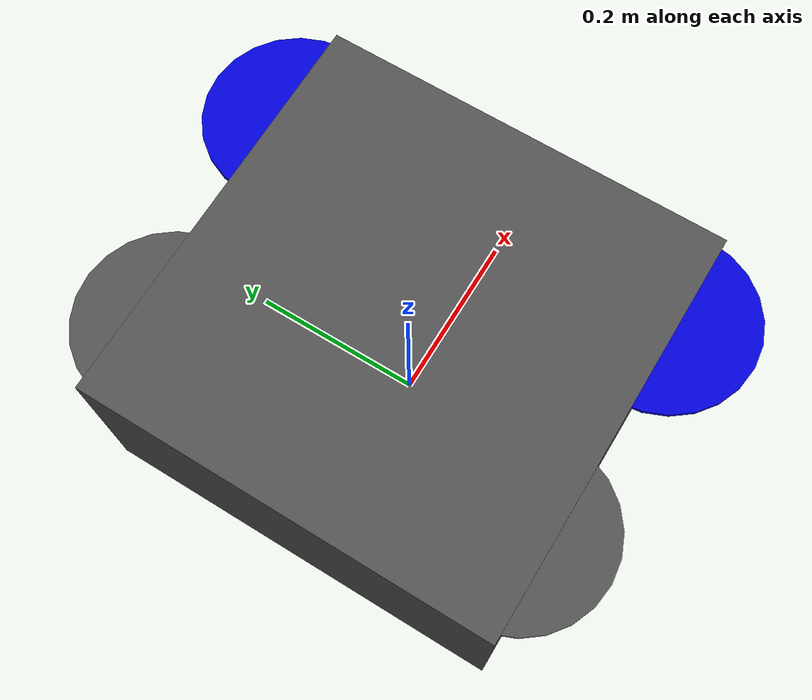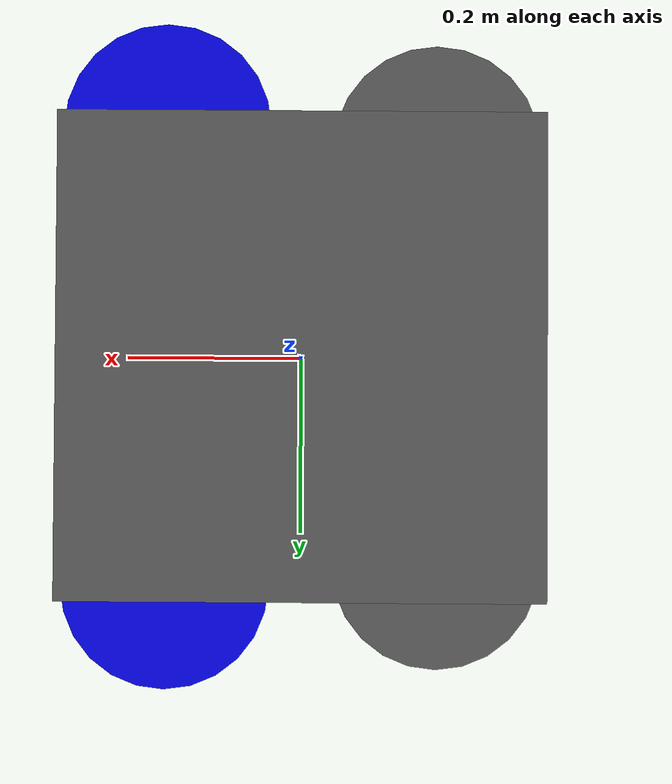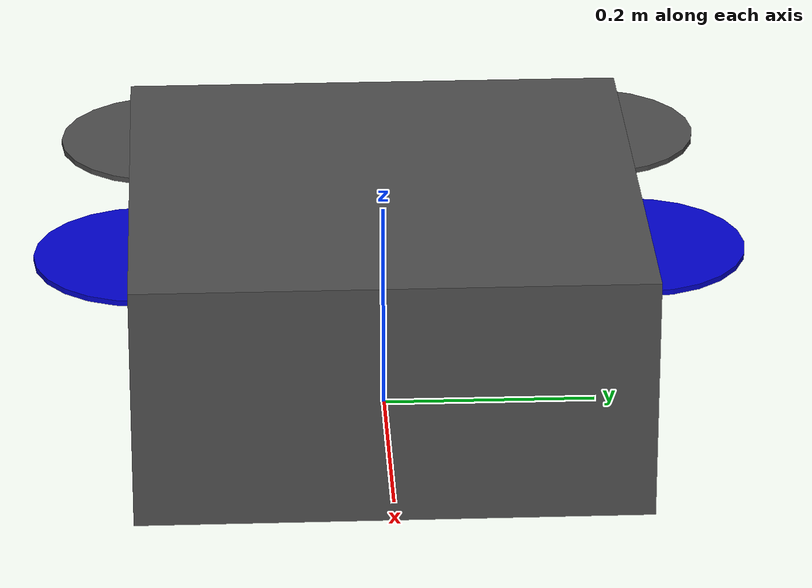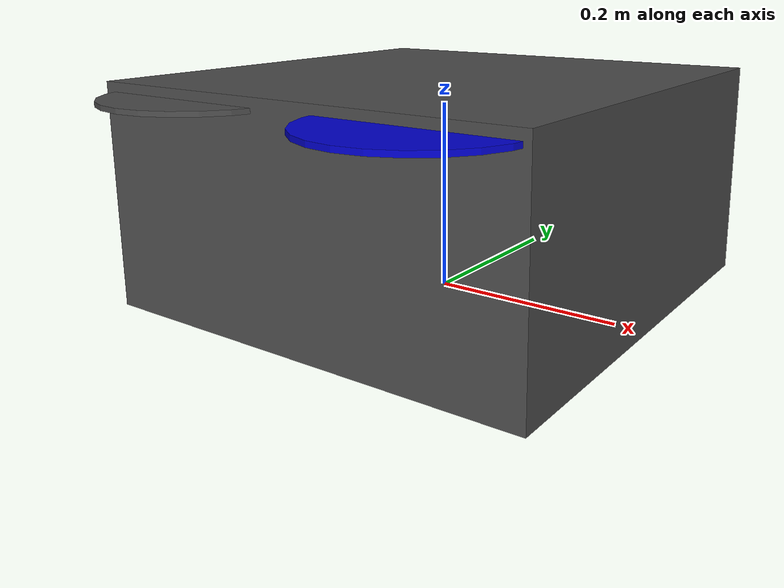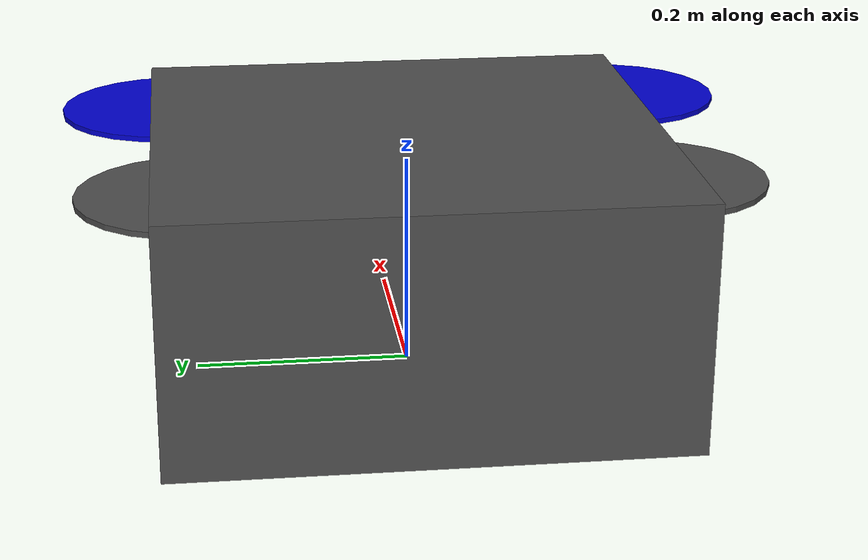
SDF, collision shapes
<?xml version='1.0'?>
<sdf version='1.9'>
  <model name='iris'>
    <pose>0 0 0.194923 0 0 0</pose>
    <link name='base_link'>
      <velocity_decay>
        <linear>0.0</linear>
        <angular>0.0</angular>
      </velocity_decay>
      <inertial>
        <pose>0 0 0 0 0 0</pose>
        <mass>0.4</mass>
        <inertia>
          <ixx>0.002</ixx>
          <ixy>0</ixy>
          <ixz>0</ixz>
          <iyy>0.004</iyy>
          <iyz>0</iyz>
          <izz>0.0045</izz>
        </inertia>
      </inertial>
      <collision name='base_link_collision'>
        <pose>0 0 -0.08 0 0 0</pose>
        <geometry>
          <box>
            <size>0.47 0.47 0.23</size>
          </box>
        </geometry>
        <surface>
          <contact>
            <ode>
              <max_vel>100.0</max_vel>
              <min_depth>0.001</min_depth>
            </ode>
          </contact>
          <friction>
            <ode>
              <mu>1.0</mu>
              <mu2>1.0</mu2>
            </ode>
          </friction>
        </surface>
      </collision>
      <visual name='base_link_visual'>
        <geometry>
          <mesh>
            <uri>model://betaloop_iris_with_standoffs/meshes/iris.dae</uri>
          </mesh>
        </geometry>
        <material>
          <ambient>0.3 0.3 0.3 1</ambient>
          <diffuse>0.3 0.3 0.3 1</diffuse>
          <specular>0.1 0.1 0.1 1</specular>
        </material>
      </visual>

      <visual name='front_left_leg_visual'>
        <pose>0.123 0.22 -0.11 0 0 0</pose>
        <geometry>
          <cylinder>
            <radius>0.005</radius>
            <length>0.17</length>
          </cylinder>
        </geometry>
        <material>
          <ambient>0.1 0.1 0.1 1</ambient>
          <diffuse>0.1 0.1 0.1 1</diffuse>
          <specular>0.01 0.01 0.01 1</specular>
        </material>
      </visual>
      <visual name='front_right_leg_visual'>
        <pose>0.123 -0.22 -0.11 0 0 0</pose>
        <geometry>
          <cylinder>
            <radius>0.005</radius>
            <length>0.17</length>
          </cylinder>
        </geometry>
        <material>
          <ambient>0.1 0.1 0.1 1</ambient>
          <diffuse>0.1 0.1 0.1 1</diffuse>
          <specular>0.01 0.01 0.01 1</specular>
        </material>
      </visual>
      <visual name='rear_left_leg_visual'>
        <pose>-0.140 0.21 -0.11 0 0 0</pose>
        <geometry>
          <cylinder>
            <radius>0.005</radius>
            <length>0.17</length>
          </cylinder>
        </geometry>
        <material>
          <ambient>0.1 0.1 0.1 1</ambient>
          <diffuse>0.1 0.1 0.1 1</diffuse>
          <specular>0.01 0.01 0.01 1</specular>
        </material>
      </visual>
      <visual name='rear_right_leg_visual'>
        <pose>-0.140 -0.21 -0.11 0 0 0</pose>
        <geometry>
          <cylinder>
            <radius>0.005</radius>
            <length>0.17</length>
          </cylinder>
        </geometry>
        <material>
          <ambient>0.1 0.1 0.1 1</ambient>
          <diffuse>0.1 0.1 0.1 1</diffuse>
          <specular>0.01 0.01 0.01 1</specular>
        </material>
      </visual>
    </link>
    <link name='iris/ground_truth/odometry_sensorgt_link'>
      <pose>0 0 0 0 -0 0</pose>
      <inertial>
        <pose>0 0 0 0 -0 0</pose>
        <mass>0.015</mass>
        <inertia>
          <ixx>0.00001</ixx>
          <ixy>0</ixy>
          <ixz>0</ixz>
          <iyy>0.00002</iyy>
          <iyz>0</iyz>
          <izz>0.00002</izz>
        </inertia>
      </inertial>
    </link>
    <joint name='iris/ground_truth/odometry_sensorgt_joint' type='revolute'>
      <child>iris/ground_truth/odometry_sensorgt_link</child>
      <parent>base_link</parent>
      <axis>
        <xyz>0 0 1</xyz>
        <limit>
          <lower>0</lower>
          <upper>0</upper>
          <effort>0</effort>
          <velocity>0</velocity>
        </limit>
        <dynamics>
          <damping>1.0</damping>
        </dynamics>
      </axis>
      <physics>
        <ode>
          <implicit_spring_damper>1</implicit_spring_damper>
        </ode>
      </physics>
    </joint>
    <link name='iris/imu_link'>
      <inertial>
        <pose>0 0 0 0 0 0</pose>
        <mass>0.015</mass>
        <inertia>
          <ixx>0.000001</ixx>
          <ixy>0</ixy>
          <ixz>0</ixz>
          <iyy>0.000002</iyy>
          <iyz>0</iyz>
          <izz>0.000002</izz>
        </inertia>
      </inertial>
      <sensor name="imu_sensor" type="imu">
        <pose>0 0 0 3.141593 0 0</pose>
        <always_on>1</always_on>
        <update_rate>1000.0</update_rate>
      </sensor>
    </link>
    <joint name='iris/imu_joint' type='revolute'>
      <child>iris/imu_link</child>
      <parent>base_link</parent>
      <axis>
        <xyz>0 0 1</xyz>
        <limit>
          <lower>0</lower>
          <upper>0</upper>
          <effort>0</effort>
          <velocity>0</velocity>
        </limit>
        <dynamics>
          <damping>1.0</damping>
        </dynamics>
      </axis>
      <physics>
        <ode>
          <implicit_spring_damper>1</implicit_spring_damper>
        </ode>
      </physics>
    </joint>

    <link name='iris/camera_link'>
      <pose>0.12 0 -0.03 0 0 0</pose>
      <inertial>
        <pose>0 0 0 0 0 0</pose>
        <mass>0.01</mass>
        <inertia>
          <ixx>0.000001</ixx>
          <ixy>0</ixy>
          <ixz>0</ixz>
          <iyy>0.000001</iyy>
          <iyz>0</iyz>
          <izz>0.000001</izz>
        </inertia>
      </inertial>
      <visual name='camera_visual'>
        <pose>0 0 0 0 1.570796 0</pose>
        <geometry>
          <cylinder>
            <radius>0.015</radius>
            <length>0.03</length>
          </cylinder>
        </geometry>
        <material>
          <ambient>0.05 0.05 0.05 1</ambient>
          <diffuse>0.05 0.05 0.05 1</diffuse>
          <specular>0.1 0.1 0.1 1</specular>
        </material>
      </visual>
      <collision name='camera_collision'>
        <pose>0 0 0 0 1.570796 0</pose>
        <geometry>
          <cylinder>
            <radius>0.015</radius>
            <length>0.03</length>
          </cylinder>
        </geometry>
      </collision>
      <sensor name='camera' type='camera'>
        <pose>0 0 0 0 0 0</pose>
        <always_on>1</always_on>
        <update_rate>30</update_rate>
        <visualize>1</visualize>
        <topic>/camera</topic>
        <camera>
          <horizontal_fov>1.570796</horizontal_fov>
          <image>
            <width>640</width>
            <height>480</height>
            <format>R8G8B8</format>
          </image>
          <clip>
            <near>0.05</near>
            <far>100</far>
          </clip>
        </camera>
      </sensor>
      <!--ultrasonic
      sensor camera front-->
      <sensor name="ultrasonic_lidar" type="gpu_lidar">
                    <pose>0 0 0 0 0 0</pose>
                    <always_on>1</always_on>
                    <update_rate>20</update_rate>
                    <visualize>true</visualize>
                    <topic>ultrasonic_lidar</topic>

                    <ray>
                        <scan>
                            <horizontal>
                                <samples>1</samples>
                                <resolution>1</resolution>
                                <min_angle>0</min_angle>
                                <max_angle>0</max_angle>
                            </horizontal>
                            <vertical>
                                <samples>1</samples>
                                <resolution>1</resolution>
                                <min_angle>0</min_angle>
                                <max_angle>0</max_angle>
                            </vertical>
                        </scan>

                        <range>
                            <min>0.02</min>
                            <max>10.0</max>
                            <resolution>0.01</resolution>
                        </range>
                    </ray>
                </sensor>
    </link>
    <joint name='iris/camera_joint' type='fixed'>
      <child>iris/camera_link</child>
      <parent>base_link</parent>
    </joint>
    <plugin name='gz::sim::systems::Camera' filename='gz-sim-camera-system' />
    <link name='rotor_0'>
      <pose>0.13 -0.22 0.023 0 -0 0</pose>
      <inertial>
        <pose>0 0 0 0 -0 0</pose>
        <mass>0.025</mass>
        <inertia>
          <ixx>9.75e-06</ixx>
          <ixy>0</ixy>
          <ixz>0</ixz>
          <iyy>0.000166704</iyy>
          <iyz>0</iyz>
          <izz>0.000167604</izz>
        </inertia>
      </inertial>
      <collision name='rotor_0_collision'>
        <pose>0 0 0 0 -0 0</pose>
        <geometry>
          <cylinder>
            <length>0.005</length>
            <radius>0.1</radius>
          </cylinder>
        </geometry>
        <surface>
          <contact>
            <ode />
          </contact>
          <friction>
            <ode />
          </friction>
        </surface>
      </collision>
      <visual name='rotor_0_visual'>
        <pose>0 0 0 0 -0 0</pose>
        <geometry>
          <mesh>
            <scale>1 1 1</scale>
            <uri>model://betaloop_iris_with_standoffs/meshes/iris_prop_ccw.dae</uri>
          </mesh>
        </geometry>
        <material>
          <ambient>0 0 0.8 1</ambient>
          <diffuse>0 0 0.8 1</diffuse>
          <specular>0.1 0.1 0.3 1</specular>
        </material>
      </visual>
      <gravity>1</gravity>
      <velocity_decay />
      <self_collide>0</self_collide>
    </link>
    <joint name='rotor_0_joint' type='revolute'>
      <child>rotor_0</child>
      <parent>base_link</parent>
      <axis>
        <xyz>0 0 1</xyz>
        <limit>
          <lower>-1e+16</lower>
          <upper>1e+16</upper>
        </limit>
        <dynamics>
          <damping>0.004</damping>
        </dynamics>
      </axis>
      <physics>
        <ode>
          <implicit_spring_damper>1</implicit_spring_damper>
        </ode>
      </physics>
    </joint>
    <link name='rotor_1'>
      <pose>-0.13 0.2 0.023 0 -0 0</pose>
      <inertial>
        <pose>0 0 0 0 -0 0</pose>
        <mass>0.025</mass>
        <inertia>
          <ixx>9.75e-06</ixx>
          <ixy>0</ixy>
          <ixz>0</ixz>
          <iyy>0.000166704</iyy>
          <iyz>0</iyz>
          <izz>0.000167604</izz>
        </inertia>
      </inertial>
      <collision name='rotor_1_collision'>
        <pose>0 0 0 0 -0 0</pose>
        <geometry>
          <cylinder>
            <length>0.005</length>
            <radius>0.1</radius>
          </cylinder>
        </geometry>
        <surface>
          <contact>
            <ode />
          </contact>
          <friction>
            <ode />
          </friction>
        </surface>
      </collision>
      <visual name='rotor_1_visual'>
        <pose>0 0 0 0 -0 0</pose>
        <geometry>
          <mesh>
            <scale>1 1 1</scale>
            <uri>model://betaloop_iris_with_standoffs/meshes/iris_prop_ccw.dae</uri>
          </mesh>
        </geometry>
        <material>
          <ambient>0.3 0.3 0.3 1</ambient>
          <diffuse>0.3 0.3 0.3 1</diffuse>
          <specular>0.1 0.1 0.1 1</specular>
        </material>
      </visual>
      <gravity>1</gravity>
      <velocity_decay />
      <self_collide>0</self_collide>
    </link>
    <joint name='rotor_1_joint' type='revolute'>
      <child>rotor_1</child>
      <parent>base_link</parent>
      <axis>
        <xyz>0 0 1</xyz>
        <limit>
          <lower>-1e+16</lower>
          <upper>1e+16</upper>
        </limit>
        <dynamics>
          <damping>0.004</damping>
        </dynamics>
      </axis>
      <physics>
        <ode>
          <implicit_spring_damper>1</implicit_spring_damper>
        </ode>
      </physics>
    </joint>
    <link name='rotor_2'>
      <pose>0.13 0.22 0.023 0 -0 0</pose>
      <inertial>
        <pose>0 0 0 0 -0 0</pose>
        <mass>0.025</mass>
        <inertia>
          <ixx>9.75e-06</ixx>
          <ixy>0</ixy>
          <ixz>0</ixz>
          <iyy>0.000166704</iyy>
          <iyz>0</iyz>
          <izz>0.000167604</izz>
        </inertia>
      </inertial>
      <collision name='rotor_2_collision'>
        <pose>0 0 0 0 -0 0</pose>
        <geometry>
          <cylinder>
            <length>0.005</length>
            <radius>0.1</radius>
          </cylinder>
        </geometry>
        <surface>
          <contact>
            <ode />
          </contact>
          <friction>
            <ode />
          </friction>
        </surface>
      </collision>
      <visual name='rotor_2_visual'>
        <pose>0 0 0 0 -0 0</pose>
        <geometry>
          <mesh>
            <scale>1 1 1</scale>
            <uri>model://betaloop_iris_with_standoffs/meshes/iris_prop_cw.dae</uri>
          </mesh>
        </geometry>
        <material>
          <ambient>0 0 0.8 1</ambient>
          <diffuse>0 0 0.8 1</diffuse>
          <specular>0.1 0.1 0.3 1</specular>
        </material>
      </visual>
      <gravity>1</gravity>
      <velocity_decay />
      <self_collide>0</self_collide>
    </link>
    <joint name='rotor_2_joint' type='revolute'>
      <child>rotor_2</child>
      <parent>base_link</parent>
      <axis>
        <xyz>0 0 1</xyz>
        <limit>
          <lower>-1e+16</lower>
          <upper>1e+16</upper>
        </limit>
        <dynamics>
          <damping>0.004</damping>
        </dynamics>
      </axis>
      <physics>
        <ode>
          <implicit_spring_damper>1</implicit_spring_damper>
        </ode>
      </physics>
    </joint>
    <link name='rotor_3'>
      <pose>-0.13 -0.2 0.023 0 -0 0</pose>
      <inertial>
        <pose>0 0 0 0 -0 0</pose>
        <mass>0.025</mass>
        <inertia>
          <ixx>9.75e-06</ixx>
          <ixy>0</ixy>
          <ixz>0</ixz>
          <iyy>0.000166704</iyy>
          <iyz>0</iyz>
          <izz>0.000167604</izz>
        </inertia>
      </inertial>
      <collision name='rotor_3_collision'>
        <pose>0 0 0 0 -0 0</pose>
        <geometry>
          <cylinder>
            <length>0.005</length>
            <radius>0.1</radius>
          </cylinder>
        </geometry>
        <surface>
          <contact>
            <ode />
          </contact>
          <friction>
            <ode />
          </friction>
        </surface>
      </collision>
      <visual name='rotor_3_visual'>
        <pose>0 0 0 0 -0 0</pose>
        <geometry>
          <mesh>
            <scale>1 1 1</scale>
            <uri>model://betaloop_iris_with_standoffs/meshes/iris_prop_cw.dae</uri>
          </mesh>
        </geometry>
        <material>
          <ambient>0.3 0.3 0.3 1</ambient>
          <diffuse>0.3 0.3 0.3 1</diffuse>
          <specular>0.1 0.1 0.1 1</specular>
        </material>
      </visual>
      <gravity>1</gravity>
      <velocity_decay />
      <self_collide>0</self_collide>
    </link>
    <joint name='rotor_3_joint' type='revolute'>
      <child>rotor_3</child>
      <parent>base_link</parent>
      <axis>
        <xyz>0 0 1</xyz>
        <limit>
          <lower>-1e+16</lower>
          <upper>1e+16</upper>
        </limit>
        <dynamics>
          <damping>0.004</damping>
        </dynamics>
      </axis>
      <physics>
        <ode>
          <implicit_spring_damper>1</implicit_spring_damper>
        </ode>
      </physics>
    </joint>

    <!-- rotor_0 (front-right, CCW via BetaflightPlugin) -->
    <plugin name="gz::sim::systems::LiftDrag" filename="gz-sim-lift-drag-system">
      <a0>0.025</a0>
      <alpha_stall>1.4</alpha_stall>
      <cla>0.2500</cla>
      <cda>0.004</cda>
      <cma>0.00</cma>
      <cla_stall>-0.025</cla_stall>
      <cda_stall>0.0</cda_stall>
      <cma_stall>0.0</cma_stall>
      <area>0.2</area>
      <air_density>1.2041</air_density>
      <cp>0.084 0 0</cp>
      <forward>0 1 0</forward>
      <upward>0 0 1</upward>
      <link_name>rotor_0</link_name>
    </plugin>
    <plugin name="gz::sim::systems::LiftDrag" filename="gz-sim-lift-drag-system">
      <a0>0.025</a0>
      <alpha_stall>1.4</alpha_stall>
      <cla>0.2500</cla>
      <cda>0.004</cda>
      <cma>0.00</cma>
      <cla_stall>-0.025</cla_stall>
      <cda_stall>0.0</cda_stall>
      <cma_stall>0.0</cma_stall>
      <area>0.2</area>
      <air_density>1.2041</air_density>
      <cp>-0.084 0 0</cp>
      <forward>0 -1 0</forward>
      <upward>0 0 1</upward>
      <link_name>rotor_0</link_name>
    </plugin>

    <!-- rotor_1 (rear-left, CCW via BetaflightPlugin) -->
    <plugin name="gz::sim::systems::LiftDrag" filename="gz-sim-lift-drag-system">
      <a0>0.025</a0>
      <alpha_stall>1.4</alpha_stall>
      <cla>0.2500</cla>
      <cda>0.004</cda>
      <cma>0.00</cma>
      <cla_stall>-0.025</cla_stall>
      <cda_stall>0.0</cda_stall>
      <cma_stall>0.0</cma_stall>
      <area>0.2</area>
      <air_density>1.2041</air_density>
      <cp>0.084 0 0</cp>
      <forward>0 1 0</forward>
      <upward>0 0 1</upward>
      <link_name>rotor_1</link_name>
    </plugin>
    <plugin name="gz::sim::systems::LiftDrag" filename="gz-sim-lift-drag-system">
      <a0>0.025</a0>
      <alpha_stall>1.4</alpha_stall>
      <cla>0.2500</cla>
      <cda>0.004</cda>
      <cma>0.00</cma>
      <cla_stall>-0.025</cla_stall>
      <cda_stall>0.0</cda_stall>
      <cma_stall>0.0</cma_stall>
      <area>0.2</area>
      <air_density>1.2041</air_density>
      <cp>-0.084 0 0</cp>
      <forward>0 -1 0</forward>
      <upward>0 0 1</upward>
      <link_name>rotor_1</link_name>
    </plugin>

    <!-- rotor_2 (front-left, CW via BetaflightPlugin) -->
    <plugin name="gz::sim::systems::LiftDrag" filename="gz-sim-lift-drag-system">
      <a0>0.025</a0>
      <alpha_stall>1.4</alpha_stall>
      <cla>0.2500</cla>
      <cda>0.004</cda>
      <cma>0.00</cma>
      <cla_stall>-0.025</cla_stall>
      <cda_stall>0.0</cda_stall>
      <cma_stall>0.0</cma_stall>
      <area>0.2</area>
      <air_density>1.2041</air_density>
      <cp>0.084 0 0</cp>
      <forward>0 -1 0</forward>
      <upward>0 0 1</upward>
      <link_name>rotor_2</link_name>
    </plugin>
    <plugin name="gz::sim::systems::LiftDrag" filename="gz-sim-lift-drag-system">
      <a0>0.025</a0>
      <alpha_stall>1.4</alpha_stall>
      <cla>0.2500</cla>
      <cda>0.004</cda>
      <cma>0.00</cma>
      <cla_stall>-0.025</cla_stall>
      <cda_stall>0.0</cda_stall>
      <cma_stall>0.0</cma_stall>
      <area>0.2</area>
      <air_density>1.2041</air_density>
      <cp>-0.084 0 0</cp>
      <forward>0 1 0</forward>
      <upward>0 0 1</upward>
      <link_name>rotor_2</link_name>
    </plugin>

    <!-- rotor_3 (rear-right, CW via BetaflightPlugin) -->
    <plugin name="gz::sim::systems::LiftDrag" filename="gz-sim-lift-drag-system">
      <a0>0.025</a0>
      <alpha_stall>1.4</alpha_stall>
      <cla>0.2500</cla>
      <cda>0.004</cda>
      <cma>0.00</cma>
      <cla_stall>-0.025</cla_stall>
      <cda_stall>0.0</cda_stall>
      <cma_stall>0.0</cma_stall>
      <area>0.2</area>
      <air_density>1.2041</air_density>
      <cp>0.084 0 0</cp>
      <forward>0 -1 0</forward>
      <upward>0 0 1</upward>
      <link_name>rotor_3</link_name>
    </plugin>
    <plugin name="gz::sim::systems::LiftDrag" filename="gz-sim-lift-drag-system">
      <a0>0.025</a0>
      <alpha_stall>1.4</alpha_stall>
      <cla>0.2500</cla>
      <cda>0.004</cda>
      <cma>0.00</cma>
      <cla_stall>-0.025</cla_stall>
      <cda_stall>0.0</cda_stall>
      <cma_stall>0.0</cma_stall>
      <area>0.2</area>
      <air_density>1.2041</air_density>
      <cp>-0.084 0 0</cp>
      <forward>0 1 0</forward>
      <upward>0 0 1</upward>
      <link_name>rotor_3</link_name>
    </plugin>

    <plugin name="gz::sim::systems::BetaflightPlugin" filename="BetaflightPlugin">
      <imuName>iris/imu_link::imu_sensor</imuName>
      <connectionTimeoutMaxCount>5</connectionTimeoutMaxCount>
      <rotor id="0">
        <vel_p_gain>0.01</vel_p_gain>
        <vel_i_gain>0</vel_i_gain>
        <vel_d_gain>0</vel_d_gain>
        <vel_i_max>0</vel_i_max>
        <vel_i_min>0</vel_i_min>
        <vel_cmd_max>838.0</vel_cmd_max>
        <vel_cmd_min>-838.0</vel_cmd_min>
        <jointName>rotor_0_joint</jointName>
        <turningDirection>ccw</turningDirection>
        <rotorVelocitySlowdownSim>1</rotorVelocitySlowdownSim>
      </rotor>
      <rotor id="1">
        <vel_p_gain>0.01</vel_p_gain>
        <vel_i_gain>0</vel_i_gain>
        <vel_d_gain>0</vel_d_gain>
        <vel_i_max>0</vel_i_max>
        <vel_i_min>0</vel_i_min>
        <vel_cmd_max>838.0</vel_cmd_max>
        <vel_cmd_min>-838.0</vel_cmd_min>
        <jointName>rotor_1_joint</jointName>
        <turningDirection>ccw</turningDirection>
        <rotorVelocitySlowdownSim>1</rotorVelocitySlowdownSim>
      </rotor>
      <rotor id="2">
        <vel_p_gain>0.01</vel_p_gain>
        <vel_i_gain>0</vel_i_gain>
        <vel_d_gain>0</vel_d_gain>
        <vel_i_max>0</vel_i_max>
        <vel_i_min>0</vel_i_min>
        <vel_cmd_max>838.0</vel_cmd_max>
        <vel_cmd_min>-838.0</vel_cmd_min>
        <jointName>rotor_2_joint</jointName>
        <turningDirection>cw</turningDirection>
        <rotorVelocitySlowdownSim>1</rotorVelocitySlowdownSim>
      </rotor>
      <rotor id="3">
        <vel_p_gain>0.01</vel_p_gain>
        <vel_i_gain>0</vel_i_gain>
        <vel_d_gain>0</vel_d_gain>
        <vel_i_max>0</vel_i_max>
        <vel_i_min>0</vel_i_min>
        <vel_cmd_max>838.0</vel_cmd_max>
        <vel_cmd_min>-838.0</vel_cmd_min>
        <jointName>rotor_3_joint</jointName>
        <turningDirection>cw</turningDirection>
        <rotorVelocitySlowdownSim>1</rotorVelocitySlowdownSim>
      </rotor>
    </plugin>

    <static>0</static>
  </model>
</sdf>
